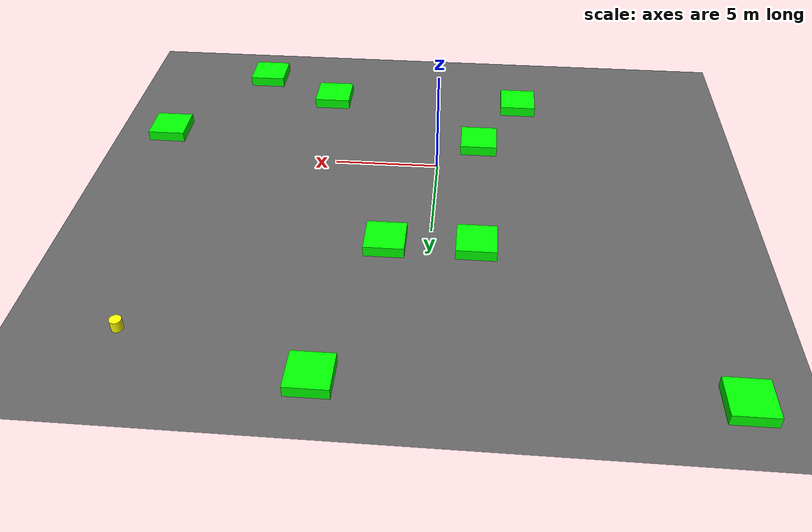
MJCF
<mujoco model="lvl99_naive_obs9_d3long_seed9042">
    <compiler angle="degree" coordinate="local" inertiafromgeom="true"/>
    <option integrator="RK4" timestep="0.01"/>

    <asset>
        <texture builtin="gradient" height="100" rgb1="0.6 0.8 1" rgb2="0 0 0" type="skybox" width="100"/>
        <texture name="floor_texture" type="2d" builtin="checker" width="100" height="100" rgb1="0 0 0" rgb2="0.8 0.8 0.8"/>
        <material name="MatPlane" reflectance="0.5" shininess="1" specular="1" texrepeat="10 10" texture="floor_texture"/>
    </asset>

    <!-- Excluding the contact between the agent and the goal, and the agent and the floor -->
    <contact>
        <exclude body1="agent" body2="goal"/>
        <exclude body1 = "agent" body2 = "floor"/>
    </contact>

    <extension>
        <plugin plugin = "mujoco.pid">
            <instance name = "pid1">
                <config key="kp" value="2"/>
                <config key="ki" value="0"/>
                <config key="kd" value="55"/>
            </instance>
        </plugin>
    </extension>

    <worldbody>
        <light cutoff="100" diffuse="1 1 1" dir="-0 0 -1.3" directional="true" exponent="1" pos="0 0 1.3" specular=".1 .1 .1"/>
        <body name="floor" pos="0 0 0">
            <geom name="floor_geom" type="plane" size="20 20 0.1" material="MatPlane"/>
        </body>

                <body name="goal" pos="0.0000 0.0000 0">
            <geom name="goal_geom" type="plane" size="0.5 0.5 1" pos="0 0 0" rgba="1 0 0 1"/>
        </body>

                <body name="agent" pos="12.0000 12.0000 0.250">
            <joint name="j1" type="slide" axis ="1 0 0 "/>
            <joint name="j2" type="slide" axis ="0 1 0 "/>
            <geom name="agent_geom" type="cylinder" size="0.25 0.25 0.250" rgba="1 1 0 1"/>
        </body>

        <body name="obstacle1" pos="-12.0465 13.9169 0.250">  <geom name="obstacle1_geom" type="box" size="0.9000 0.9000 0.250" rgba="0 1 0 1"/></body>
        <body name="obstacle2" pos="3.9653 13.9456 0.250">  <geom name="obstacle2_geom" type="box" size="0.9000 0.9000 0.250" rgba="0 1 0 1"/></body>
        <body name="obstacle3" pos="-2.0561 5.9017 0.250">  <geom name="obstacle3_geom" type="box" size="0.9000 0.9000 0.250" rgba="0 1 0 1"/></body>
        <body name="obstacle4" pos="1.9559 6.0025 0.250">  <geom name="obstacle4_geom" type="box" size="0.9000 0.9000 0.250" rgba="0 1 0 1"/></body>
        <body name="obstacle5" pos="-1.9936 -2.0388 0.250">  <geom name="obstacle5_geom" type="box" size="0.9000 0.9000 0.250" rgba="0 1 0 1"/></body>
        <body name="obstacle6" pos="13.9649 -2.0688 0.250">  <geom name="obstacle6_geom" type="box" size="0.9000 0.9000 0.250" rgba="0 1 0 1"/></body>
        <body name="obstacle7" pos="-3.9995 -5.9069 0.250">  <geom name="obstacle7_geom" type="box" size="0.9000 0.9000 0.250" rgba="0 1 0 1"/></body>
        <body name="obstacle8" pos="5.9596 -5.9042 0.250">  <geom name="obstacle8_geom" type="box" size="0.9000 0.9000 0.250" rgba="0 1 0 1"/></body>
        <body name="obstacle9" pos="9.9219 -7.9346 0.250">  <geom name="obstacle9_geom" type="box" size="0.9000 0.9000 0.250" rgba="0 1 0 1"/></body>

    </worldbody>

    <sensor>
<!-- SENSORS -->

        <distance name="dist1" geom1="agent_geom" geom2="obstacle1_geom" cutoff="1.5"/>
        <distance name="dist2" geom1="agent_geom" geom2="obstacle2_geom" cutoff="1.5"/>
        <distance name="dist3" geom1="agent_geom" geom2="obstacle3_geom" cutoff="1.5"/>
        <distance name="dist4" geom1="agent_geom" geom2="obstacle4_geom" cutoff="1.5"/>
        <distance name="dist5" geom1="agent_geom" geom2="obstacle5_geom" cutoff="1.5"/>
        <distance name="dist6" geom1="agent_geom" geom2="obstacle6_geom" cutoff="1.5"/>
        <distance name="dist7" geom1="agent_geom" geom2="obstacle7_geom" cutoff="1.5"/>
        <distance name="dist8" geom1="agent_geom" geom2="obstacle8_geom" cutoff="1.5"/>
        <distance name="dist9" geom1="agent_geom" geom2="obstacle9_geom" cutoff="1.5"/>
</sensor>

    <actuator>
        <plugin joint="j1" plugin="mujoco.pid" instance="pid1" />
        <plugin joint="j2" plugin="mujoco.pid" instance="pid1"/>
    </actuator>
</mujoco>
